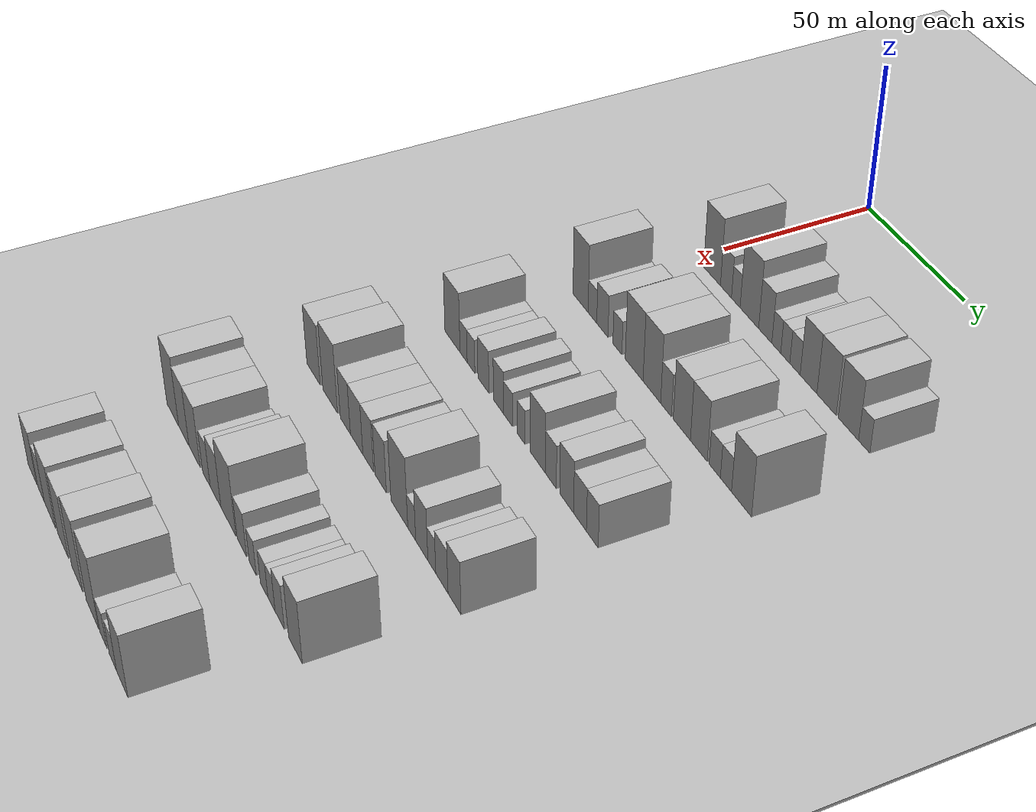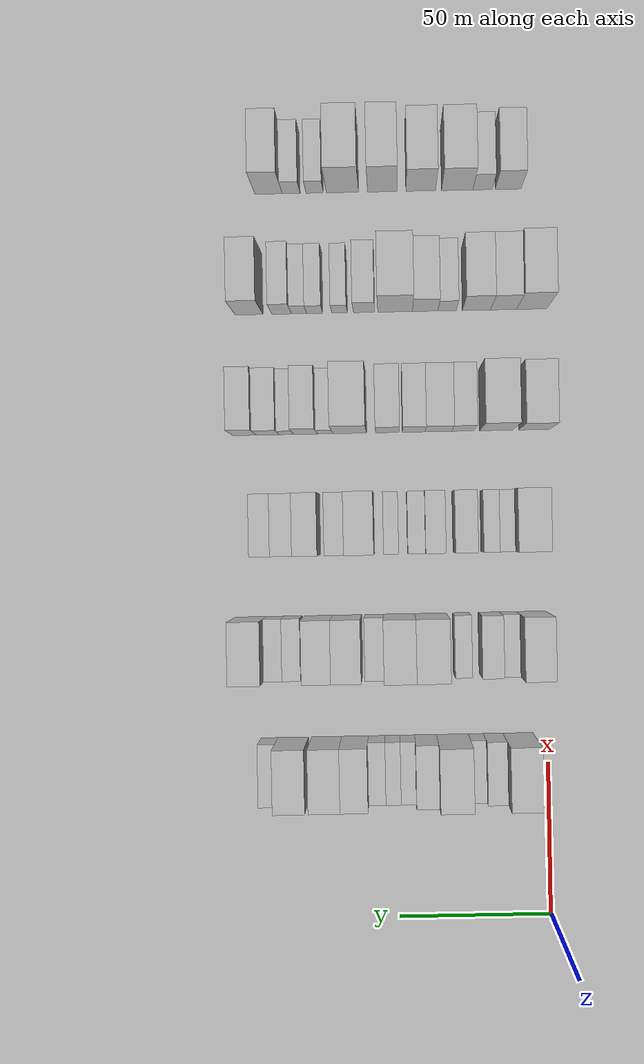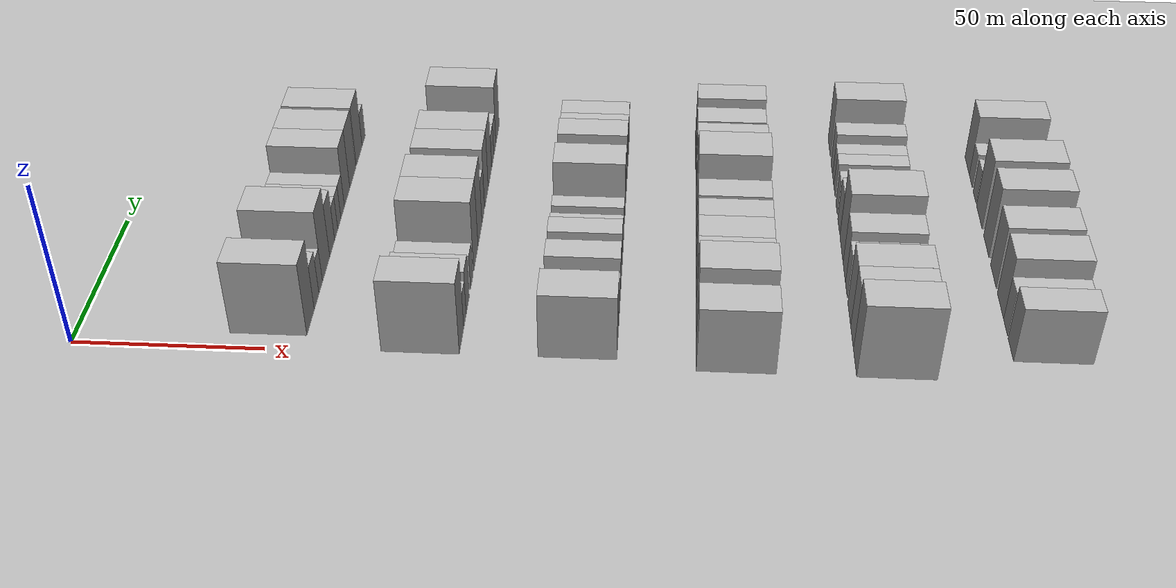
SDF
<sdf version="1.6">
 <world name="default">
  <include><name>ground_plane_1</name><uri>model://HANNAS_ground_plane</uri></include>
  <include>
   <name>ground_plane_2</name>
   <uri>model://HANNAS_ground_plane</uri>
   <pose>100 0 0  0 0 0</pose>
  </include>
  <model name="building_65">
   <static>1</static>
   <pose>50.0000 10.0117 0 0.000000 0.000000 0.000000</pose>
   <link name="link">
    <pose>0 0 12.00 0 0 0</pose>
    <collision name="collision"><geometry><box><size>20.0000 9.9206 24.0000</size></box></geometry></collision>
    <visual name="visual">
     <cast_shadows>0</cast_shadows>
     <geometry><box><size>20.0000 9.9206 24.0000</size></box></geometry>
     <material>
      <script>
       <uri>model://HANNAS_wall/materials/scripts</uri>
       <uri>model://HANNAS_wall/materials/textures</uri>
       <name>vrc/HANNAS_wall</name>
      </script>
     </material>
    </visual>
   </link>
  </model>
  <model name="building_66">
   <static>1</static>
   <pose>50.0000 18.1784 0 0.000000 0.000000 0.000000</pose>
   <link name="link">
    <pose>0 0 7.50 0 0 0</pose>
    <collision name="collision"><geometry><box><size>20.0000 6.4127 15.0000</size></box></geometry></collision>
    <visual name="visual">
     <cast_shadows>0</cast_shadows>
     <geometry><box><size>20.0000 6.4127 15.0000</size></box></geometry>
     <material>
      <script>
       <uri>model://HANNAS_wall/materials/scripts</uri>
       <uri>model://HANNAS_wall/materials/textures</uri>
       <name>vrc/HANNAS_wall</name>
      </script>
     </material>
    </visual>
   </link>
  </model>
  <model name="building_67">
   <static>1</static>
   <pose>50.0000 23.8648 0 0.000000 0.000000 0.000000</pose>
   <link name="link">
    <pose>0 0 6.00 0 0 0</pose>
    <collision name="collision"><geometry><box><size>20.0000 4.9601 12.0000</size></box></geometry></collision>
    <visual name="visual">
     <cast_shadows>0</cast_shadows>
     <geometry><box><size>20.0000 4.9601 12.0000</size></box></geometry>
     <material>
      <script>
       <uri>model://HANNAS_wall/materials/scripts</uri>
       <uri>model://HANNAS_wall/materials/textures</uri>
       <name>vrc/HANNAS_wall</name>
      </script>
     </material>
    </visual>
   </link>
  </model>
  <model name="building_68">
   <static>1</static>
   <pose>50.0000 31.5771 0 0.000000 0.000000 0.000000</pose>
   <link name="link">
    <pose>0 0 12.00 0 0 0</pose>
    <collision name="collision"><geometry><box><size>20.0000 10.4645 24.0000</size></box></geometry></collision>
    <visual name="visual">
     <cast_shadows>0</cast_shadows>
     <geometry><box><size>20.0000 10.4645 24.0000</size></box></geometry>
     <material>
      <script>
       <uri>model://HANNAS_wall/materials/scripts</uri>
       <uri>model://HANNAS_wall/materials/textures</uri>
       <name>vrc/HANNAS_wall</name>
      </script>
     </material>
    </visual>
   </link>
  </model>
  <model name="building_69">
   <static>1</static>
   <pose>50.0000 40.4453 0 0.000000 0.000000 0.000000</pose>
   <link name="link">
    <pose>0 0 9.00 0 0 0</pose>
    <collision name="collision"><geometry><box><size>20.0000 7.2718 18.0000</size></box></geometry></collision>
    <visual name="visual">
     <cast_shadows>0</cast_shadows>
     <geometry><box><size>20.0000 7.2718 18.0000</size></box></geometry>
     <material>
      <script>
       <uri>model://HANNAS_wall/materials/scripts</uri>
       <uri>model://HANNAS_wall/materials/textures</uri>
       <name>vrc/HANNAS_wall</name>
      </script>
     </material>
    </visual>
   </link>
  </model>
  <model name="building_70">
   <static>1</static>
   <pose>50.0000 46.5001 0 0.000000 0.000000 0.000000</pose>
   <link name="link">
    <pose>0 0 6.00 0 0 0</pose>
    <collision name="collision"><geometry><box><size>20.0000 4.8379 12.0000</size></box></geometry></collision>
    <visual name="visual">
     <cast_shadows>0</cast_shadows>
     <geometry><box><size>20.0000 4.8379 12.0000</size></box></geometry>
     <material>
      <script>
       <uri>model://HANNAS_wall/materials/scripts</uri>
       <uri>model://HANNAS_wall/materials/textures</uri>
       <name>vrc/HANNAS_wall</name>
      </script>
     </material>
    </visual>
   </link>
  </model>
  <model name="building_71">
   <static>1</static>
   <pose>50.0000 51.3526 0 0.000000 0.000000 0.000000</pose>
   <link name="link">
    <pose>0 0 6.00 0 0 0</pose>
    <collision name="collision"><geometry><box><size>20.0000 4.8672 12.0000</size></box></geometry></collision>
    <visual name="visual">
     <cast_shadows>0</cast_shadows>
     <geometry><box><size>20.0000 4.8672 12.0000</size></box></geometry>
     <material>
      <script>
       <uri>model://HANNAS_wall/materials/scripts</uri>
       <uri>model://HANNAS_wall/materials/textures</uri>
       <name>vrc/HANNAS_wall</name>
      </script>
     </material>
    </visual>
   </link>
  </model>
  <model name="building_72">
   <static>1</static>
   <pose>50.0000 56.5397 0 0.000000 0.000000 0.000000</pose>
   <link name="link">
    <pose>0 0 6.00 0 0 0</pose>
    <collision name="collision"><geometry><box><size>20.0000 5.5069 12.0000</size></box></geometry></collision>
    <visual name="visual">
     <cast_shadows>0</cast_shadows>
     <geometry><box><size>20.0000 5.5069 12.0000</size></box></geometry>
     <material>
      <script>
       <uri>model://HANNAS_wall/materials/scripts</uri>
       <uri>model://HANNAS_wall/materials/textures</uri>
       <name>vrc/HANNAS_wall</name>
      </script>
     </material>
    </visual>
   </link>
  </model>
  <model name="building_73">
   <static>1</static>
   <pose>50.0000 63.6686 0 0.000000 0.000000 0.000000</pose>
   <link name="link">
    <pose>0 0 10.50 0 0 0</pose>
    <collision name="collision"><geometry><box><size>20.0000 8.7510 21.0000</size></box></geometry></collision>
    <visual name="visual">
     <cast_shadows>0</cast_shadows>
     <geometry><box><size>20.0000 8.7510 21.0000</size></box></geometry>
     <material>
      <script>
       <uri>model://HANNAS_wall/materials/scripts</uri>
       <uri>model://HANNAS_wall/materials/textures</uri>
       <name>vrc/HANNAS_wall</name>
      </script>
     </material>
    </visual>
   </link>
  </model>
  <model name="building_74">
   <static>1</static>
   <pose>50.0000 72.9881 0 0.000000 0.000000 0.000000</pose>
   <link name="link">
    <pose>0 0 10.50 0 0 0</pose>
    <collision name="collision"><geometry><box><size>20.0000 9.8880 21.0000</size></box></geometry></collision>
    <visual name="visual">
     <cast_shadows>0</cast_shadows>
     <geometry><box><size>20.0000 9.8880 21.0000</size></box></geometry>
     <material>
      <script>
       <uri>model://HANNAS_wall/materials/scripts</uri>
       <uri>model://HANNAS_wall/materials/textures</uri>
       <name>vrc/HANNAS_wall</name>
      </script>
     </material>
    </visual>
   </link>
  </model>
  <model name="building_75">
   <static>1</static>
   <pose>50.0000 83.9756 0 0.000000 0.000000 0.000000</pose>
   <link name="link">
    <pose>0 0 10.50 0 0 0</pose>
    <collision name="collision"><geometry><box><size>20.0000 10.0869 21.0000</size></box></geometry></collision>
    <visual name="visual">
     <cast_shadows>0</cast_shadows>
     <geometry><box><size>20.0000 10.0869 21.0000</size></box></geometry>
     <material>
      <script>
       <uri>model://HANNAS_wall/materials/scripts</uri>
       <uri>model://HANNAS_wall/materials/textures</uri>
       <name>vrc/HANNAS_wall</name>
      </script>
     </material>
    </visual>
   </link>
  </model>
  <model name="building_76">
   <static>1</static>
   <pose>50.0000 91.7912 0 0.000000 0.000000 0.000000</pose>
   <link name="link">
    <pose>0 0 6.00 0 0 0</pose>
    <collision name="collision"><geometry><box><size>20.0000 5.5443 12.0000</size></box></geometry></collision>
    <visual name="visual">
     <cast_shadows>0</cast_shadows>
     <geometry><box><size>20.0000 5.5443 12.0000</size></box></geometry>
     <material>
      <script>
       <uri>model://HANNAS_wall/materials/scripts</uri>
       <uri>model://HANNAS_wall/materials/textures</uri>
       <name>vrc/HANNAS_wall</name>
      </script>
     </material>
    </visual>
   </link>
  </model>
  <model name="building_203">
   <static>1</static>
   <pose>90.0000 5.0510 0 0.000000 0.000000 0.000000</pose>
   <link name="link">
    <pose>0 0 12.00 0 0 0</pose>
    <collision name="collision"><geometry><box><size>20.0000 9.6612 24.0000</size></box></geometry></collision>
    <visual name="visual">
     <cast_shadows>0</cast_shadows>
     <geometry><box><size>20.0000 9.6612 24.0000</size></box></geometry>
     <material>
      <script>
       <uri>model://HANNAS_wall/materials/scripts</uri>
       <uri>model://HANNAS_wall/materials/textures</uri>
       <name>vrc/HANNAS_wall</name>
      </script>
     </material>
    </visual>
   </link>
  </model>
  <model name="building_204">
   <static>1</static>
   <pose>90.0000 12.6163 0 0.000000 0.000000 0.000000</pose>
   <link name="link">
    <pose>0 0 6.00 0 0 0</pose>
    <collision name="collision"><geometry><box><size>20.0000 5.4695 12.0000</size></box></geometry></collision>
    <visual name="visual">
     <cast_shadows>0</cast_shadows>
     <geometry><box><size>20.0000 5.4695 12.0000</size></box></geometry>
     <material>
      <script>
       <uri>model://HANNAS_wall/materials/scripts</uri>
       <uri>model://HANNAS_wall/materials/textures</uri>
       <name>vrc/HANNAS_wall</name>
      </script>
     </material>
    </visual>
   </link>
  </model>
  <model name="building_205">
   <static>1</static>
   <pose>90.0000 18.8289 0 0.000000 0.000000 0.000000</pose>
   <link name="link">
    <pose>0 0 7.50 0 0 0</pose>
    <collision name="collision"><geometry><box><size>20.0000 6.9557 15.0000</size></box></geometry></collision>
    <visual name="visual">
     <cast_shadows>0</cast_shadows>
     <geometry><box><size>20.0000 6.9557 15.0000</size></box></geometry>
     <material>
      <script>
       <uri>model://HANNAS_wall/materials/scripts</uri>
       <uri>model://HANNAS_wall/materials/textures</uri>
       <name>vrc/HANNAS_wall</name>
      </script>
     </material>
    </visual>
   </link>
  </model>
  <model name="building_206">
   <static>1</static>
   <pose>90.0000 28.0441 0 0.000000 0.000000 0.000000</pose>
   <link name="link">
    <pose>0 0 6.00 0 0 0</pose>
    <collision name="collision"><geometry><box><size>20.0000 5.4748 12.0000</size></box></geometry></collision>
    <visual name="visual">
     <cast_shadows>0</cast_shadows>
     <geometry><box><size>20.0000 5.4748 12.0000</size></box></geometry>
     <material>
      <script>
       <uri>model://HANNAS_wall/materials/scripts</uri>
       <uri>model://HANNAS_wall/materials/textures</uri>
       <name>vrc/HANNAS_wall</name>
      </script>
     </material>
    </visual>
   </link>
  </model>
  <model name="building_207">
   <static>1</static>
   <pose>90.0000 38.0630 0 0.000000 0.000000 0.000000</pose>
   <link name="link">
    <pose>0 0 12.00 0 0 0</pose>
    <collision name="collision"><geometry><box><size>20.0000 10.5629 24.0000</size></box></geometry></collision>
    <visual name="visual">
     <cast_shadows>0</cast_shadows>
     <geometry><box><size>20.0000 10.5629 24.0000</size></box></geometry>
     <material>
      <script>
       <uri>model://HANNAS_wall/materials/scripts</uri>
       <uri>model://HANNAS_wall/materials/textures</uri>
       <name>vrc/HANNAS_wall</name>
      </script>
     </material>
    </visual>
   </link>
  </model>
  <model name="building_208">
   <static>1</static>
   <pose>90.0000 48.4247 0 0.000000 0.000000 0.000000</pose>
   <link name="link">
    <pose>0 0 12.00 0 0 0</pose>
    <collision name="collision"><geometry><box><size>20.0000 10.1606 24.0000</size></box></geometry></collision>
    <visual name="visual">
     <cast_shadows>0</cast_shadows>
     <geometry><box><size>20.0000 10.1606 24.0000</size></box></geometry>
     <material>
      <script>
       <uri>model://HANNAS_wall/materials/scripts</uri>
       <uri>model://HANNAS_wall/materials/textures</uri>
       <name>vrc/HANNAS_wall</name>
      </script>
     </material>
    </visual>
   </link>
  </model>
  <model name="building_209">
   <static>1</static>
   <pose>90.0000 56.5769 0 0.000000 0.000000 0.000000</pose>
   <link name="link">
    <pose>0 0 7.50 0 0 0</pose>
    <collision name="collision"><geometry><box><size>20.0000 6.1439 15.0000</size></box></geometry></collision>
    <visual name="visual">
     <cast_shadows>0</cast_shadows>
     <geometry><box><size>20.0000 6.1439 15.0000</size></box></geometry>
     <material>
      <script>
       <uri>model://HANNAS_wall/materials/scripts</uri>
       <uri>model://HANNAS_wall/materials/textures</uri>
       <name>vrc/HANNAS_wall</name>
      </script>
     </material>
    </visual>
   </link>
  </model>
  <model name="building_210">
   <static>1</static>
   <pose>90.0000 65.4051 0 0.000000 0.000000 0.000000</pose>
   <link name="link">
    <pose>0 0 10.50 0 0 0</pose>
    <collision name="collision"><geometry><box><size>20.0000 9.5125 21.0000</size></box></geometry></collision>
    <visual name="visual">
     <cast_shadows>0</cast_shadows>
     <geometry><box><size>20.0000 9.5125 21.0000</size></box></geometry>
     <material>
      <script>
       <uri>model://HANNAS_wall/materials/scripts</uri>
       <uri>model://HANNAS_wall/materials/textures</uri>
       <name>vrc/HANNAS_wall</name>
      </script>
     </material>
    </visual>
   </link>
  </model>
  <model name="building_211">
   <static>1</static>
   <pose>90.0000 74.7142 0 0.000000 0.000000 0.000000</pose>
   <link name="link">
    <pose>0 0 10.50 0 0 0</pose>
    <collision name="collision"><geometry><box><size>20.0000 9.1057 21.0000</size></box></geometry></collision>
    <visual name="visual">
     <cast_shadows>0</cast_shadows>
     <geometry><box><size>20.0000 9.1057 21.0000</size></box></geometry>
     <material>
      <script>
       <uri>model://HANNAS_wall/materials/scripts</uri>
       <uri>model://HANNAS_wall/materials/textures</uri>
       <name>vrc/HANNAS_wall</name>
      </script>
     </material>
    </visual>
   </link>
  </model>
  <model name="building_212">
   <static>1</static>
   <pose>90.0000 83.2459 0 0.000000 0.000000 0.000000</pose>
   <link name="link">
    <pose>0 0 6.00 0 0 0</pose>
    <collision name="collision"><geometry><box><size>20.0000 5.9577 12.0000</size></box></geometry></collision>
    <visual name="visual">
     <cast_shadows>0</cast_shadows>
     <geometry><box><size>20.0000 5.9577 12.0000</size></box></geometry>
     <material>
      <script>
       <uri>model://HANNAS_wall/materials/scripts</uri>
       <uri>model://HANNAS_wall/materials/textures</uri>
       <name>vrc/HANNAS_wall</name>
      </script>
     </material>
    </visual>
   </link>
  </model>
  <model name="building_213">
   <static>1</static>
   <pose>90.0000 89.1263 0 0.000000 0.000000 0.000000</pose>
   <link name="link">
    <pose>0 0 6.00 0 0 0</pose>
    <collision name="collision"><geometry><box><size>20.0000 5.8031 12.0000</size></box></geometry></collision>
    <visual name="visual">
     <cast_shadows>0</cast_shadows>
     <geometry><box><size>20.0000 5.8031 12.0000</size></box></geometry>
     <material>
      <script>
       <uri>model://HANNAS_wall/materials/scripts</uri>
       <uri>model://HANNAS_wall/materials/textures</uri>
       <name>vrc/HANNAS_wall</name>
      </script>
     </material>
    </visual>
   </link>
  </model>
  <model name="building_214">
   <static>1</static>
   <pose>90.0000 97.1503 0 0.000000 0.000000 0.000000</pose>
   <link name="link">
    <pose>0 0 10.50 0 0 0</pose>
    <collision name="collision"><geometry><box><size>20.0000 10.2450 21.0000</size></box></geometry></collision>
    <visual name="visual">
     <cast_shadows>0</cast_shadows>
     <geometry><box><size>20.0000 10.2450 21.0000</size></box></geometry>
     <material>
      <script>
       <uri>model://HANNAS_wall/materials/scripts</uri>
       <uri>model://HANNAS_wall/materials/textures</uri>
       <name>vrc/HANNAS_wall</name>
      </script>
     </material>
    </visual>
   </link>
  </model>
  <model name="building_342">
   <static>1</static>
   <pose>130.0000 5.5694 0 0.000000 0.000000 0.000000</pose>
   <link name="link">
    <pose>0 0 10.50 0 0 0</pose>
    <collision name="collision"><geometry><box><size>20.0000 10.4323 21.0000</size></box></geometry></collision>
    <visual name="visual">
     <cast_shadows>0</cast_shadows>
     <geometry><box><size>20.0000 10.4323 21.0000</size></box></geometry>
     <material>
      <script>
       <uri>model://HANNAS_wall/materials/scripts</uri>
       <uri>model://HANNAS_wall/materials/textures</uri>
       <name>vrc/HANNAS_wall</name>
      </script>
     </material>
    </visual>
   </link>
  </model>
  <model name="building_343">
   <static>1</static>
   <pose>130.0000 13.2275 0 0.000000 0.000000 0.000000</pose>
   <link name="link">
    <pose>0 0 6.00 0 0 0</pose>
    <collision name="collision"><geometry><box><size>20.0000 4.8839 12.0000</size></box></geometry></collision>
    <visual name="visual">
     <cast_shadows>0</cast_shadows>
     <geometry><box><size>20.0000 4.8839 12.0000</size></box></geometry>
     <material>
      <script>
       <uri>model://HANNAS_wall/materials/scripts</uri>
       <uri>model://HANNAS_wall/materials/textures</uri>
       <name>vrc/HANNAS_wall</name>
      </script>
     </material>
    </visual>
   </link>
  </model>
  <model name="building_344">
   <static>1</static>
   <pose>130.0000 18.2561 0 0.000000 0.000000 0.000000</pose>
   <link name="link">
    <pose>0 0 6.00 0 0 0</pose>
    <collision name="collision"><geometry><box><size>20.0000 5.1734 12.0000</size></box></geometry></collision>
    <visual name="visual">
     <cast_shadows>0</cast_shadows>
     <geometry><box><size>20.0000 5.1734 12.0000</size></box></geometry>
     <material>
      <script>
       <uri>model://HANNAS_wall/materials/scripts</uri>
       <uri>model://HANNAS_wall/materials/textures</uri>
       <name>vrc/HANNAS_wall</name>
      </script>
     </material>
    </visual>
   </link>
  </model>
  <model name="building_345">
   <static>1</static>
   <pose>130.0000 26.4716 0 0.000000 0.000000 0.000000</pose>
   <link name="link">
    <pose>0 0 7.50 0 0 0</pose>
    <collision name="collision"><geometry><box><size>20.0000 7.2575 15.0000</size></box></geometry></collision>
    <visual name="visual">
     <cast_shadows>0</cast_shadows>
     <geometry><box><size>20.0000 7.2575 15.0000</size></box></geometry>
     <material>
      <script>
       <uri>model://HANNAS_wall/materials/scripts</uri>
       <uri>model://HANNAS_wall/materials/textures</uri>
       <name>vrc/HANNAS_wall</name>
      </script>
     </material>
    </visual>
   </link>
  </model>
  <model name="building_346">
   <static>1</static>
   <pose>130.0000 36.3251 0 0.000000 0.000000 0.000000</pose>
   <link name="link">
    <pose>0 0 7.50 0 0 0</pose>
    <collision name="collision"><geometry><box><size>20.0000 6.4497 15.0000</size></box></geometry></collision>
    <visual name="visual">
     <cast_shadows>0</cast_shadows>
     <geometry><box><size>20.0000 6.4497 15.0000</size></box></geometry>
     <material>
      <script>
       <uri>model://HANNAS_wall/materials/scripts</uri>
       <uri>model://HANNAS_wall/materials/textures</uri>
       <name>vrc/HANNAS_wall</name>
      </script>
     </material>
    </visual>
   </link>
  </model>
  <model name="building_347">
   <static>1</static>
   <pose>130.0000 42.3524 0 0.000000 0.000000 0.000000</pose>
   <link name="link">
    <pose>0 0 6.00 0 0 0</pose>
    <collision name="collision"><geometry><box><size>20.0000 5.6047 12.0000</size></box></geometry></collision>
    <visual name="visual">
     <cast_shadows>0</cast_shadows>
     <geometry><box><size>20.0000 5.6047 12.0000</size></box></geometry>
     <material>
      <script>
       <uri>model://HANNAS_wall/materials/scripts</uri>
       <uri>model://HANNAS_wall/materials/textures</uri>
       <name>vrc/HANNAS_wall</name>
      </script>
     </material>
    </visual>
   </link>
  </model>
  <model name="building_348">
   <static>1</static>
   <pose>130.0000 50.5658 0 0.000000 0.000000 0.000000</pose>
   <link name="link">
    <pose>0 0 6.00 0 0 0</pose>
    <collision name="collision"><geometry><box><size>20.0000 4.8222 12.0000</size></box></geometry></collision>
    <visual name="visual">
     <cast_shadows>0</cast_shadows>
     <geometry><box><size>20.0000 4.8222 12.0000</size></box></geometry>
     <material>
      <script>
       <uri>model://HANNAS_wall/materials/scripts</uri>
       <uri>model://HANNAS_wall/materials/textures</uri>
       <name>vrc/HANNAS_wall</name>
      </script>
     </material>
    </visual>
   </link>
  </model>
  <model name="building_349">
   <static>1</static>
   <pose>130.0000 60.6786 0 0.000000 0.000000 0.000000</pose>
   <link name="link">
    <pose>0 0 10.50 0 0 0</pose>
    <collision name="collision"><geometry><box><size>20.0000 9.4032 21.0000</size></box></geometry></collision>
    <visual name="visual">
     <cast_shadows>0</cast_shadows>
     <geometry><box><size>20.0000 9.4032 21.0000</size></box></geometry>
     <material>
      <script>
       <uri>model://HANNAS_wall/materials/scripts</uri>
       <uri>model://HANNAS_wall/materials/textures</uri>
       <name>vrc/HANNAS_wall</name>
      </script>
     </material>
    </visual>
   </link>
  </model>
  <model name="building_350">
   <static>1</static>
   <pose>130.0000 68.6013 0 0.000000 0.000000 0.000000</pose>
   <link name="link">
    <pose>0 0 7.50 0 0 0</pose>
    <collision name="collision"><geometry><box><size>20.0000 6.4421 15.0000</size></box></geometry></collision>
    <visual name="visual">
     <cast_shadows>0</cast_shadows>
     <geometry><box><size>20.0000 6.4421 15.0000</size></box></geometry>
     <material>
      <script>
       <uri>model://HANNAS_wall/materials/scripts</uri>
       <uri>model://HANNAS_wall/materials/textures</uri>
       <name>vrc/HANNAS_wall</name>
      </script>
     </material>
    </visual>
   </link>
  </model>
  <model name="building_351">
   <static>1</static>
   <pose>130.0000 77.8153 0 0.000000 0.000000 0.000000</pose>
   <link name="link">
    <pose>0 0 9.00 0 0 0</pose>
    <collision name="collision"><geometry><box><size>20.0000 7.9859 18.0000</size></box></geometry></collision>
    <visual name="visual">
     <cast_shadows>0</cast_shadows>
     <geometry><box><size>20.0000 7.9859 18.0000</size></box></geometry>
     <material>
      <script>
       <uri>model://HANNAS_wall/materials/scripts</uri>
       <uri>model://HANNAS_wall/materials/textures</uri>
       <name>vrc/HANNAS_wall</name>
      </script>
     </material>
    </visual>
   </link>
  </model>
  <model name="building_352">
   <static>1</static>
   <pose>130.0000 85.4507 0 0.000000 0.000000 0.000000</pose>
   <link name="link">
    <pose>0 0 7.50 0 0 0</pose>
    <collision name="collision"><geometry><box><size>20.0000 7.2851 15.0000</size></box></geometry></collision>
    <visual name="visual">
     <cast_shadows>0</cast_shadows>
     <geometry><box><size>20.0000 7.2851 15.0000</size></box></geometry>
     <material>
      <script>
       <uri>model://HANNAS_wall/materials/scripts</uri>
       <uri>model://HANNAS_wall/materials/textures</uri>
       <name>vrc/HANNAS_wall</name>
      </script>
     </material>
    </visual>
   </link>
  </model>
  <model name="building_353">
   <static>1</static>
   <pose>130.0000 92.3872 0 0.000000 0.000000 0.000000</pose>
   <link name="link">
    <pose>0 0 7.50 0 0 0</pose>
    <collision name="collision"><geometry><box><size>20.0000 6.5878 15.0000</size></box></geometry></collision>
    <visual name="visual">
     <cast_shadows>0</cast_shadows>
     <geometry><box><size>20.0000 6.5878 15.0000</size></box></geometry>
     <material>
      <script>
       <uri>model://HANNAS_wall/materials/scripts</uri>
       <uri>model://HANNAS_wall/materials/textures</uri>
       <name>vrc/HANNAS_wall</name>
      </script>
     </material>
    </visual>
   </link>
  </model>
  <model name="building_484">
   <static>1</static>
   <pose>170.0000 2.4244 0 0.000000 0.000000 0.000000</pose>
   <link name="link">
    <pose>0 0 10.50 0 0 0</pose>
    <collision name="collision"><geometry><box><size>20.0000 10.1729 21.0000</size></box></geometry></collision>
    <visual name="visual">
     <cast_shadows>0</cast_shadows>
     <geometry><box><size>20.0000 10.1729 21.0000</size></box></geometry>
     <material>
      <script>
       <uri>model://HANNAS_wall/materials/scripts</uri>
       <uri>model://HANNAS_wall/materials/textures</uri>
       <name>vrc/HANNAS_wall</name>
      </script>
     </material>
    </visual>
   </link>
  </model>
  <model name="building_485">
   <static>1</static>
   <pose>170.0000 14.9886 0 0.000000 0.000000 0.000000</pose>
   <link name="link">
    <pose>0 0 12.00 0 0 0</pose>
    <collision name="collision"><geometry><box><size>20.0000 10.9555 24.0000</size></box></geometry></collision>
    <visual name="visual">
     <cast_shadows>0</cast_shadows>
     <geometry><box><size>20.0000 10.9555 24.0000</size></box></geometry>
     <material>
      <script>
       <uri>model://HANNAS_wall/materials/scripts</uri>
       <uri>model://HANNAS_wall/materials/textures</uri>
       <name>vrc/HANNAS_wall</name>
      </script>
     </material>
    </visual>
   </link>
  </model>
  <model name="building_486">
   <static>1</static>
   <pose>170.0000 26.1295 0 0.000000 0.000000 0.000000</pose>
   <link name="link">
    <pose>0 0 9.00 0 0 0</pose>
    <collision name="collision"><geometry><box><size>20.0000 7.3262 18.0000</size></box></geometry></collision>
    <visual name="visual">
     <cast_shadows>0</cast_shadows>
     <geometry><box><size>20.0000 7.3262 18.0000</size></box></geometry>
     <material>
      <script>
       <uri>model://HANNAS_wall/materials/scripts</uri>
       <uri>model://HANNAS_wall/materials/textures</uri>
       <name>vrc/HANNAS_wall</name>
      </script>
     </material>
    </visual>
   </link>
  </model>
  <model name="building_487">
   <static>1</static>
   <pose>170.0000 34.2171 0 0.000000 0.000000 0.000000</pose>
   <link name="link">
    <pose>0 0 9.00 0 0 0</pose>
    <collision name="collision"><geometry><box><size>20.0000 8.8491 18.0000</size></box></geometry></collision>
    <visual name="visual">
     <cast_shadows>0</cast_shadows>
     <geometry><box><size>20.0000 8.8491 18.0000</size></box></geometry>
     <material>
      <script>
       <uri>model://HANNAS_wall/materials/scripts</uri>
       <uri>model://HANNAS_wall/materials/textures</uri>
       <name>vrc/HANNAS_wall</name>
      </script>
     </material>
    </visual>
   </link>
  </model>
  <model name="building_488">
   <static>1</static>
   <pose>170.0000 42.3714 0 0.000000 0.000000 0.000000</pose>
   <link name="link">
    <pose>0 0 9.00 0 0 0</pose>
    <collision name="collision"><geometry><box><size>20.0000 7.4595 18.0000</size></box></geometry></collision>
    <visual name="visual">
     <cast_shadows>0</cast_shadows>
     <geometry><box><size>20.0000 7.4595 18.0000</size></box></geometry>
     <material>
      <script>
       <uri>model://HANNAS_wall/materials/scripts</uri>
       <uri>model://HANNAS_wall/materials/textures</uri>
       <name>vrc/HANNAS_wall</name>
      </script>
     </material>
    </visual>
   </link>
  </model>
  <model name="building_489">
   <static>1</static>
   <pose>170.0000 50.9772 0 0.000000 0.000000 0.000000</pose>
   <link name="link">
    <pose>0 0 9.00 0 0 0</pose>
    <collision name="collision"><geometry><box><size>20.0000 7.7520 18.0000</size></box></geometry></collision>
    <visual name="visual">
     <cast_shadows>0</cast_shadows>
     <geometry><box><size>20.0000 7.7520 18.0000</size></box></geometry>
     <material>
      <script>
       <uri>model://HANNAS_wall/materials/scripts</uri>
       <uri>model://HANNAS_wall/materials/textures</uri>
       <name>vrc/HANNAS_wall</name>
      </script>
     </material>
    </visual>
   </link>
  </model>
  <model name="building_490">
   <static>1</static>
   <pose>170.0000 63.4035 0 0.000000 0.000000 0.000000</pose>
   <link name="link">
    <pose>0 0 12.00 0 0 0</pose>
    <collision name="collision"><geometry><box><size>20.0000 11.1007 24.0000</size></box></geometry></collision>
    <visual name="visual">
     <cast_shadows>0</cast_shadows>
     <geometry><box><size>20.0000 11.1007 24.0000</size></box></geometry>
     <material>
      <script>
       <uri>model://HANNAS_wall/materials/scripts</uri>
       <uri>model://HANNAS_wall/materials/textures</uri>
       <name>vrc/HANNAS_wall</name>
      </script>
     </material>
    </visual>
   </link>
  </model>
  <model name="building_491">
   <static>1</static>
   <pose>170.0000 71.5061 0 0.000000 0.000000 0.000000</pose>
   <link name="link">
    <pose>0 0 6.00 0 0 0</pose>
    <collision name="collision"><geometry><box><size>20.0000 5.1044 12.0000</size></box></geometry></collision>
    <visual name="visual">
     <cast_shadows>0</cast_shadows>
     <geometry><box><size>20.0000 5.1044 12.0000</size></box></geometry>
     <material>
      <script>
       <uri>model://HANNAS_wall/materials/scripts</uri>
       <uri>model://HANNAS_wall/materials/textures</uri>
       <name>vrc/HANNAS_wall</name>
      </script>
     </material>
    </visual>
   </link>
  </model>
  <model name="building_492">
   <static>1</static>
   <pose>170.0000 77.9080 0 0.000000 0.000000 0.000000</pose>
   <link name="link">
    <pose>0 0 9.00 0 0 0</pose>
    <collision name="collision"><geometry><box><size>20.0000 7.6995 18.0000</size></box></geometry></collision>
    <visual name="visual">
     <cast_shadows>0</cast_shadows>
     <geometry><box><size>20.0000 7.6995 18.0000</size></box></geometry>
     <material>
      <script>
       <uri>model://HANNAS_wall/materials/scripts</uri>
       <uri>model://HANNAS_wall/materials/textures</uri>
       <name>vrc/HANNAS_wall</name>
      </script>
     </material>
    </visual>
   </link>
  </model>
  <model name="building_493">
   <static>1</static>
   <pose>170.0000 84.2237 0 0.000000 0.000000 0.000000</pose>
   <link name="link">
    <pose>0 0 6.00 0 0 0</pose>
    <collision name="collision"><geometry><box><size>20.0000 4.9317 12.0000</size></box></geometry></collision>
    <visual name="visual">
     <cast_shadows>0</cast_shadows>
     <geometry><box><size>20.0000 4.9317 12.0000</size></box></geometry>
     <material>
      <script>
       <uri>model://HANNAS_wall/materials/scripts</uri>
       <uri>model://HANNAS_wall/materials/textures</uri>
       <name>vrc/HANNAS_wall</name>
      </script>
     </material>
    </visual>
   </link>
  </model>
  <model name="building_494">
   <static>1</static>
   <pose>170.0000 90.4385 0 0.000000 0.000000 0.000000</pose>
   <link name="link">
    <pose>0 0 7.50 0 0 0</pose>
    <collision name="collision"><geometry><box><size>20.0000 7.4979 15.0000</size></box></geometry></collision>
    <visual name="visual">
     <cast_shadows>0</cast_shadows>
     <geometry><box><size>20.0000 7.4979 15.0000</size></box></geometry>
     <material>
      <script>
       <uri>model://HANNAS_wall/materials/scripts</uri>
       <uri>model://HANNAS_wall/materials/textures</uri>
       <name>vrc/HANNAS_wall</name>
      </script>
     </material>
    </visual>
   </link>
  </model>
  <model name="building_495">
   <static>1</static>
   <pose>170.0000 98.0845 0 0.000000 0.000000 0.000000</pose>
   <link name="link">
    <pose>0 0 9.00 0 0 0</pose>
    <collision name="collision"><geometry><box><size>20.0000 7.7941 18.0000</size></box></geometry></collision>
    <visual name="visual">
     <cast_shadows>0</cast_shadows>
     <geometry><box><size>20.0000 7.7941 18.0000</size></box></geometry>
     <material>
      <script>
       <uri>model://HANNAS_wall/materials/scripts</uri>
       <uri>model://HANNAS_wall/materials/textures</uri>
       <name>vrc/HANNAS_wall</name>
      </script>
     </material>
    </visual>
   </link>
  </model>
  <model name="building_623">
   <static>1</static>
   <pose>210.0000 2.3958 0 0.000000 0.000000 0.000000</pose>
   <link name="link">
    <pose>0 0 12.00 0 0 0</pose>
    <collision name="collision"><geometry><box><size>20.0000 10.0767 24.0000</size></box></geometry></collision>
    <visual name="visual">
     <cast_shadows>0</cast_shadows>
     <geometry><box><size>20.0000 10.0767 24.0000</size></box></geometry>
     <material>
      <script>
       <uri>model://HANNAS_wall/materials/scripts</uri>
       <uri>model://HANNAS_wall/materials/textures</uri>
       <name>vrc/HANNAS_wall</name>
      </script>
     </material>
    </visual>
   </link>
  </model>
  <model name="building_624">
   <static>1</static>
   <pose>210.0000 11.7753 0 0.000000 0.000000 0.000000</pose>
   <link name="link">
    <pose>0 0 10.50 0 0 0</pose>
    <collision name="collision"><geometry><box><size>20.0000 8.6823 21.0000</size></box></geometry></collision>
    <visual name="visual">
     <cast_shadows>0</cast_shadows>
     <geometry><box><size>20.0000 8.6823 21.0000</size></box></geometry>
     <material>
      <script>
       <uri>model://HANNAS_wall/materials/scripts</uri>
       <uri>model://HANNAS_wall/materials/textures</uri>
       <name>vrc/HANNAS_wall</name>
      </script>
     </material>
    </visual>
   </link>
  </model>
  <model name="building_625">
   <static>1</static>
   <pose>210.0000 20.7501 0 0.000000 0.000000 0.000000</pose>
   <link name="link">
    <pose>0 0 10.50 0 0 0</pose>
    <collision name="collision"><geometry><box><size>20.0000 9.2674 21.0000</size></box></geometry></collision>
    <visual name="visual">
     <cast_shadows>0</cast_shadows>
     <geometry><box><size>20.0000 9.2674 21.0000</size></box></geometry>
     <material>
      <script>
       <uri>model://HANNAS_wall/materials/scripts</uri>
       <uri>model://HANNAS_wall/materials/textures</uri>
       <name>vrc/HANNAS_wall</name>
      </script>
     </material>
    </visual>
   </link>
  </model>
  <model name="building_626">
   <static>1</static>
   <pose>210.0000 30.4166 0 0.000000 0.000000 0.000000</pose>
   <link name="link">
    <pose>0 0 7.50 0 0 0</pose>
    <collision name="collision"><geometry><box><size>20.0000 6.0656 15.0000</size></box></geometry></collision>
    <visual name="visual">
     <cast_shadows>0</cast_shadows>
     <geometry><box><size>20.0000 6.0656 15.0000</size></box></geometry>
     <material>
      <script>
       <uri>model://HANNAS_wall/materials/scripts</uri>
       <uri>model://HANNAS_wall/materials/textures</uri>
       <name>vrc/HANNAS_wall</name>
      </script>
     </material>
    </visual>
   </link>
  </model>
  <model name="building_627">
   <static>1</static>
   <pose>210.0000 37.6864 0 0.000000 0.000000 0.000000</pose>
   <link name="link">
    <pose>0 0 9.00 0 0 0</pose>
    <collision name="collision"><geometry><box><size>20.0000 8.4738 18.0000</size></box></geometry></collision>
    <visual name="visual">
     <cast_shadows>0</cast_shadows>
     <geometry><box><size>20.0000 8.4738 18.0000</size></box></geometry>
     <material>
      <script>
       <uri>model://HANNAS_wall/materials/scripts</uri>
       <uri>model://HANNAS_wall/materials/textures</uri>
       <name>vrc/HANNAS_wall</name>
      </script>
     </material>
    </visual>
   </link>
  </model>
  <model name="building_628">
   <static>1</static>
   <pose>210.0000 47.6591 0 0.000000 0.000000 0.000000</pose>
   <link name="link">
    <pose>0 0 12.00 0 0 0</pose>
    <collision name="collision"><geometry><box><size>20.0000 11.4718 24.0000</size></box></geometry></collision>
    <visual name="visual">
     <cast_shadows>0</cast_shadows>
     <geometry><box><size>20.0000 11.4718 24.0000</size></box></geometry>
     <material>
      <script>
       <uri>model://HANNAS_wall/materials/scripts</uri>
       <uri>model://HANNAS_wall/materials/textures</uri>
       <name>vrc/HANNAS_wall</name>
      </script>
     </material>
    </visual>
   </link>
  </model>
  <model name="building_629">
   <static>1</static>
   <pose>210.0000 57.9125 0 0.000000 0.000000 0.000000</pose>
   <link name="link">
    <pose>0 0 7.50 0 0 0</pose>
    <collision name="collision"><geometry><box><size>20.0000 7.0351 15.0000</size></box></geometry></collision>
    <visual name="visual">
     <cast_shadows>0</cast_shadows>
     <geometry><box><size>20.0000 7.0351 15.0000</size></box></geometry>
     <material>
      <script>
       <uri>model://HANNAS_wall/materials/scripts</uri>
       <uri>model://HANNAS_wall/materials/textures</uri>
       <name>vrc/HANNAS_wall</name>
      </script>
     </material>
    </visual>
   </link>
  </model>
  <model name="building_630">
   <static>1</static>
   <pose>210.0000 65.9986 0 0.000000 0.000000 0.000000</pose>
   <link name="link">
    <pose>0 0 6.00 0 0 0</pose>
    <collision name="collision"><geometry><box><size>20.0000 5.1370 12.0000</size></box></geometry></collision>
    <visual name="visual">
     <cast_shadows>0</cast_shadows>
     <geometry><box><size>20.0000 5.1370 12.0000</size></box></geometry>
     <material>
      <script>
       <uri>model://HANNAS_wall/materials/scripts</uri>
       <uri>model://HANNAS_wall/materials/textures</uri>
       <name>vrc/HANNAS_wall</name>
      </script>
     </material>
    </visual>
   </link>
  </model>
  <model name="building_631">
   <static>1</static>
   <pose>210.0000 74.2475 0 0.000000 0.000000 0.000000</pose>
   <link name="link">
    <pose>0 0 6.00 0 0 0</pose>
    <collision name="collision"><geometry><box><size>20.0000 5.3610 12.0000</size></box></geometry></collision>
    <visual name="visual">
     <cast_shadows>0</cast_shadows>
     <geometry><box><size>20.0000 5.3610 12.0000</size></box></geometry>
     <material>
      <script>
       <uri>model://HANNAS_wall/materials/scripts</uri>
       <uri>model://HANNAS_wall/materials/textures</uri>
       <name>vrc/HANNAS_wall</name>
      </script>
     </material>
    </visual>
   </link>
  </model>
  <model name="building_632">
   <static>1</static>
   <pose>210.0000 79.4453 0 0.000000 0.000000 0.000000</pose>
   <link name="link">
    <pose>0 0 6.00 0 0 0</pose>
    <collision name="collision"><geometry><box><size>20.0000 5.0346 12.0000</size></box></geometry></collision>
    <visual name="visual">
     <cast_shadows>0</cast_shadows>
     <geometry><box><size>20.0000 5.0346 12.0000</size></box></geometry>
     <material>
      <script>
       <uri>model://HANNAS_wall/materials/scripts</uri>
       <uri>model://HANNAS_wall/materials/textures</uri>
       <name>vrc/HANNAS_wall</name>
      </script>
     </material>
    </visual>
   </link>
  </model>
  <model name="building_633">
   <static>1</static>
   <pose>210.0000 85.1751 0 0.000000 0.000000 0.000000</pose>
   <link name="link">
    <pose>0 0 7.50 0 0 0</pose>
    <collision name="collision"><geometry><box><size>20.0000 6.4250 15.0000</size></box></geometry></collision>
    <visual name="visual">
     <cast_shadows>0</cast_shadows>
     <geometry><box><size>20.0000 6.4250 15.0000</size></box></geometry>
     <material>
      <script>
       <uri>model://HANNAS_wall/materials/scripts</uri>
       <uri>model://HANNAS_wall/materials/textures</uri>
       <name>vrc/HANNAS_wall</name>
      </script>
     </material>
    </visual>
   </link>
  </model>
  <model name="building_634">
   <static>1</static>
   <pose>210.0000 95.9914 0 0.000000 0.000000 0.000000</pose>
   <link name="link">
    <pose>0 0 10.50 0 0 0</pose>
    <collision name="collision"><geometry><box><size>20.0000 9.2077 21.0000</size></box></geometry></collision>
    <visual name="visual">
     <cast_shadows>0</cast_shadows>
     <geometry><box><size>20.0000 9.2077 21.0000</size></box></geometry>
     <material>
      <script>
       <uri>model://HANNAS_wall/materials/scripts</uri>
       <uri>model://HANNAS_wall/materials/textures</uri>
       <name>vrc/HANNAS_wall</name>
      </script>
     </material>
    </visual>
   </link>
  </model>
  <model name="building_767">
   <static>1</static>
   <pose>250.0000 9.4150 0 0.000000 0.000000 0.000000</pose>
   <link name="link">
    <pose>0 0 9.00 0 0 0</pose>
    <collision name="collision"><geometry><box><size>20.0000 8.5600 18.0000</size></box></geometry></collision>
    <visual name="visual">
     <cast_shadows>0</cast_shadows>
     <geometry><box><size>20.0000 8.5600 18.0000</size></box></geometry>
     <material>
      <script>
       <uri>model://HANNAS_wall/materials/scripts</uri>
       <uri>model://HANNAS_wall/materials/textures</uri>
       <name>vrc/HANNAS_wall</name>
      </script>
     </material>
    </visual>
   </link>
  </model>
  <model name="building_768">
   <static>1</static>
   <pose>250.0000 17.8730 0 0.000000 0.000000 0.000000</pose>
   <link name="link">
    <pose>0 0 7.50 0 0 0</pose>
    <collision name="collision"><geometry><box><size>20.0000 6.3560 15.0000</size></box></geometry></collision>
    <visual name="visual">
     <cast_shadows>0</cast_shadows>
     <geometry><box><size>20.0000 6.3560 15.0000</size></box></geometry>
     <material>
      <script>
       <uri>model://HANNAS_wall/materials/scripts</uri>
       <uri>model://HANNAS_wall/materials/textures</uri>
       <name>vrc/HANNAS_wall</name>
      </script>
     </material>
    </visual>
   </link>
  </model>
  <model name="building_769">
   <static>1</static>
   <pose>250.0000 26.2526 0 0.000000 0.000000 0.000000</pose>
   <link name="link">
    <pose>0 0 10.50 0 0 0</pose>
    <collision name="collision"><geometry><box><size>20.0000 10.4032 21.0000</size></box></geometry></collision>
    <visual name="visual">
     <cast_shadows>0</cast_shadows>
     <geometry><box><size>20.0000 10.4032 21.0000</size></box></geometry>
     <material>
      <script>
       <uri>model://HANNAS_wall/materials/scripts</uri>
       <uri>model://HANNAS_wall/materials/textures</uri>
       <name>vrc/HANNAS_wall</name>
      </script>
     </material>
    </visual>
   </link>
  </model>
  <model name="building_770">
   <static>1</static>
   <pose>250.0000 38.3604 0 0.000000 0.000000 0.000000</pose>
   <link name="link">
    <pose>0 0 10.50 0 0 0</pose>
    <collision name="collision"><geometry><box><size>20.0000 9.8125 21.0000</size></box></geometry></collision>
    <visual name="visual">
     <cast_shadows>0</cast_shadows>
     <geometry><box><size>20.0000 9.8125 21.0000</size></box></geometry>
     <material>
      <script>
       <uri>model://HANNAS_wall/materials/scripts</uri>
       <uri>model://HANNAS_wall/materials/textures</uri>
       <name>vrc/HANNAS_wall</name>
      </script>
     </material>
    </visual>
   </link>
  </model>
  <model name="building_771">
   <static>1</static>
   <pose>250.0000 51.1099 0 0.000000 0.000000 0.000000</pose>
   <link name="link">
    <pose>0 0 12.00 0 0 0</pose>
    <collision name="collision"><geometry><box><size>20.0000 9.6864 24.0000</size></box></geometry></collision>
    <visual name="visual">
     <cast_shadows>0</cast_shadows>
     <geometry><box><size>20.0000 9.6864 24.0000</size></box></geometry>
     <material>
      <script>
       <uri>model://HANNAS_wall/materials/scripts</uri>
       <uri>model://HANNAS_wall/materials/textures</uri>
       <name>vrc/HANNAS_wall</name>
      </script>
     </material>
    </visual>
   </link>
  </model>
  <model name="building_772">
   <static>1</static>
   <pose>250.0000 64.2843 0 0.000000 0.000000 0.000000</pose>
   <link name="link">
    <pose>0 0 12.00 0 0 0</pose>
    <collision name="collision"><geometry><box><size>20.0000 10.6625 24.0000</size></box></geometry></collision>
    <visual name="visual">
     <cast_shadows>0</cast_shadows>
     <geometry><box><size>20.0000 10.6625 24.0000</size></box></geometry>
     <material>
      <script>
       <uri>model://HANNAS_wall/materials/scripts</uri>
       <uri>model://HANNAS_wall/materials/textures</uri>
       <name>vrc/HANNAS_wall</name>
      </script>
     </material>
    </visual>
   </link>
  </model>
  <model name="building_773">
   <static>1</static>
   <pose>250.0000 73.4667 0 0.000000 0.000000 0.000000</pose>
   <link name="link">
    <pose>0 0 6.00 0 0 0</pose>
    <collision name="collision"><geometry><box><size>20.0000 5.7023 12.0000</size></box></geometry></collision>
    <visual name="visual">
     <cast_shadows>0</cast_shadows>
     <geometry><box><size>20.0000 5.7023 12.0000</size></box></geometry>
     <material>
      <script>
       <uri>model://HANNAS_wall/materials/scripts</uri>
       <uri>model://HANNAS_wall/materials/textures</uri>
       <name>vrc/HANNAS_wall</name>
      </script>
     </material>
    </visual>
   </link>
  </model>
  <model name="building_774">
   <static>1</static>
   <pose>250.0000 81.3013 0 0.000000 0.000000 0.000000</pose>
   <link name="link">
    <pose>0 0 6.00 0 0 0</pose>
    <collision name="collision"><geometry><box><size>20.0000 5.9669 12.0000</size></box></geometry></collision>
    <visual name="visual">
     <cast_shadows>0</cast_shadows>
     <geometry><box><size>20.0000 5.9669 12.0000</size></box></geometry>
     <material>
      <script>
       <uri>model://HANNAS_wall/materials/scripts</uri>
       <uri>model://HANNAS_wall/materials/textures</uri>
       <name>vrc/HANNAS_wall</name>
      </script>
     </material>
    </visual>
   </link>
  </model>
  <model name="building_775">
   <static>1</static>
   <pose>250.0000 88.7888 0 0.000000 0.000000 0.000000</pose>
   <link name="link">
    <pose>0 0 10.50 0 0 0</pose>
    <collision name="collision"><geometry><box><size>20.0000 9.0081 21.0000</size></box></geometry></collision>
    <visual name="visual">
     <cast_shadows>0</cast_shadows>
     <geometry><box><size>20.0000 9.0081 21.0000</size></box></geometry>
     <material>
      <script>
       <uri>model://HANNAS_wall/materials/scripts</uri>
       <uri>model://HANNAS_wall/materials/textures</uri>
       <name>vrc/HANNAS_wall</name>
      </script>
     </material>
    </visual>
   </link>
  </model>
 </world>
</sdf>
